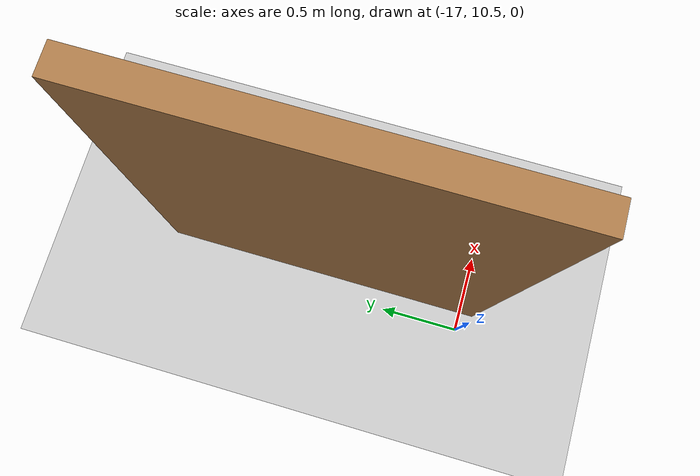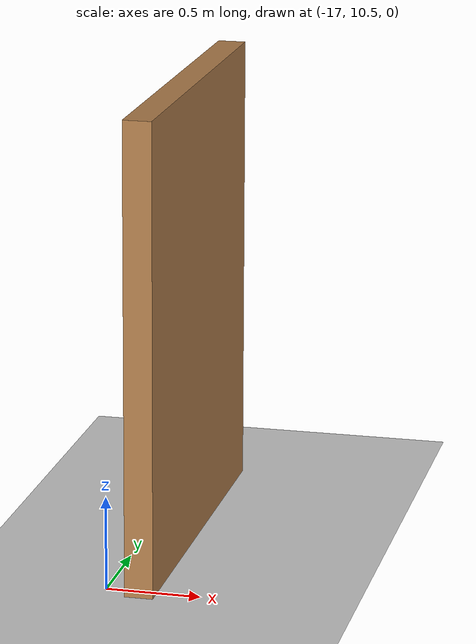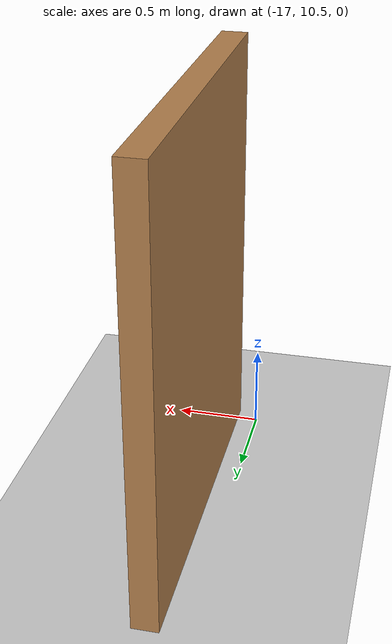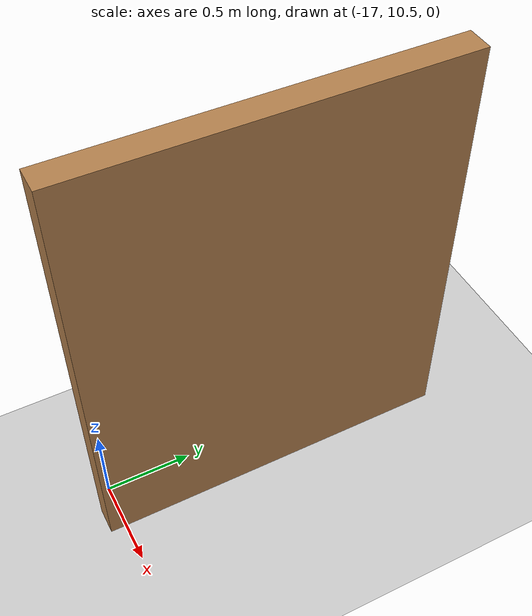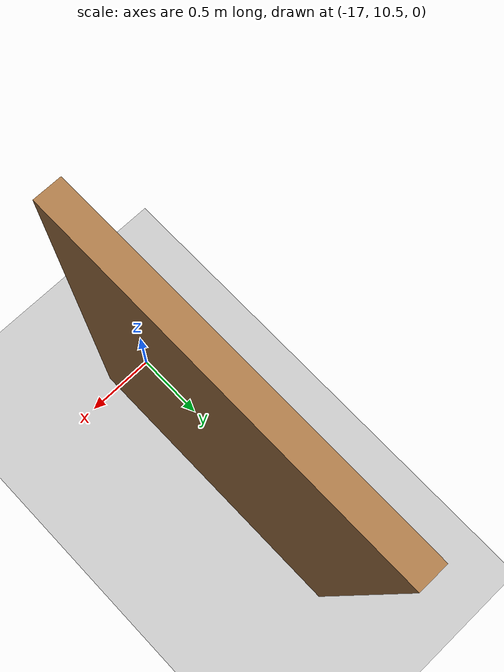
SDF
<sdf version="1.6">
 <world name="default">
  <model name="ground_plane">
   <static>1</static>
   <link name="link">
    <collision name="collision">
     <geometry><plane><normal>0 0 1</normal><size>100 100</size></plane></geometry>
     <surface><friction><ode><mu>100</mu><mu2>50</mu2></ode></friction></surface>
    </collision>
    <visual name="visual">
     <cast_shadows>0</cast_shadows>
     <geometry><plane><normal>0 0 1</normal><size>100 100</size></plane></geometry>
     <material>
      <script><uri>file://media/materials/scripts/gazebo.material</uri><name>Gazebo/Grey</name></script>
     </material>
    </visual>
   </link>
  </model>
  <model name="Building">
   <pose>5.7189 -2.01548 0 0 -0 0</pose>
   <link name="Wall_19">
    <collision name="Wall_19_Collision">
     <geometry><box><size>2.1 0.15 2.5</size></box></geometry>
     <pose>0 0 1.25 0 -0 0</pose>
    </collision>
    <visual name="Wall_19_Visual">
     <pose>0 0 1.25 0 -0 0</pose>
     <geometry><box><size>2.1 0.15 2.5</size></box></geometry>
     <material>
      <script><uri>file://media/materials/scripts/gazebo.material</uri><name>Gazebo/Wood</name></script>
      <ambient>0.921569 0.807843 0.615686 1</ambient>
     </material>
     <meta><layer>0</layer></meta>
    </visual>
    <pose>-22.5247 13.4751 0 0 0 -1.5708</pose>
   </link>
   <static>1</static>
  </model>
 </world>
</sdf>
